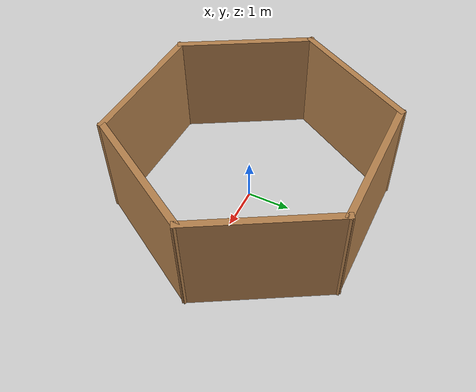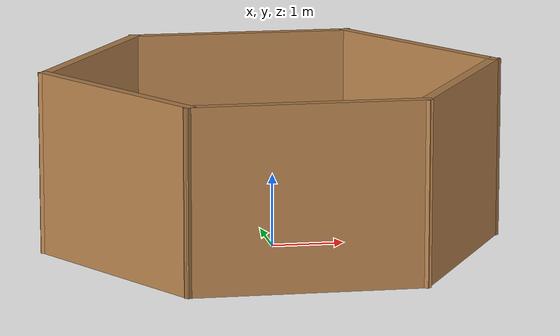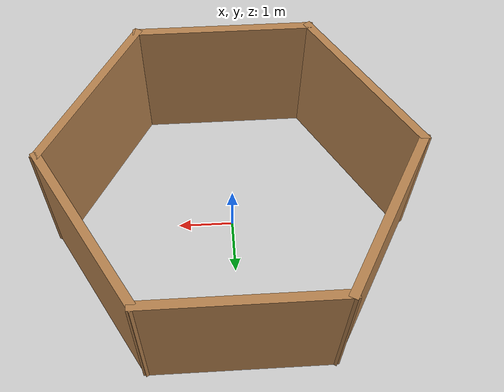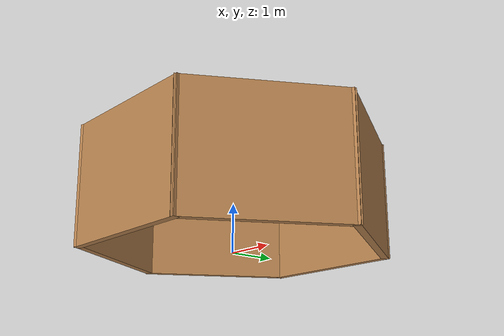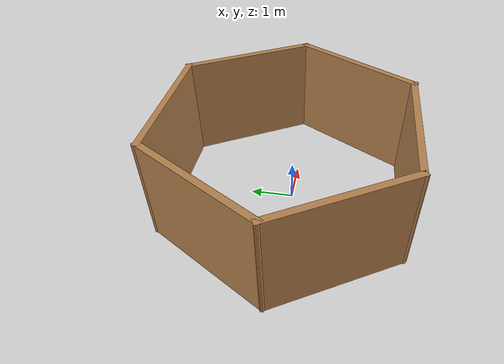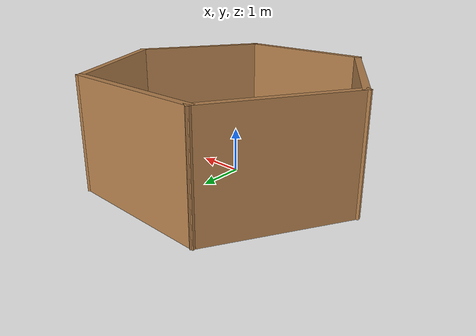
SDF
<?xml version='1.0'?>
<sdf version='1.7'>
  <model name='fishbotwall'>
    <pose>0.016925 0.106771 0 0 -0 0</pose>
    <link name='Wall_0'>
      <collision name='Wall_0_Collision'>
        <geometry>
          <box>
            <size>3.25 0.15 2.5</size>
          </box>
        </geometry>
        <pose>0 0 1.25 0 -0 0</pose>
      </collision>
      <visual name='Wall_0_Visual'>
        <pose>0 0 1.25 0 -0 0</pose>
        <geometry>
          <box>
            <size>3.25 0.15 2.5</size>
          </box>
        </geometry>
        <material>
          <script>
            <uri>file://media/materials/scripts/gazebo.material</uri>
            <name>Gazebo/Wood</name>
          </script>
          <ambient>1 1 1 1</ambient>
        </material>
        <meta>
          <layer>0</layer>
        </meta>
      </visual>
      <pose>0 2.68468 0 0 -0 0</pose>
    </link>
    <link name='Wall_1'>
      <collision name='Wall_1_Collision'>
        <geometry>
          <box>
            <size>3.25 0.15 2.5</size>
          </box>
        </geometry>
        <pose>0 0 1.25 0 -0 0</pose>
      </collision>
      <visual name='Wall_1_Visual'>
        <pose>0 0 1.25 0 -0 0</pose>
        <geometry>
          <box>
            <size>3.25 0.15 2.5</size>
          </box>
        </geometry>
        <material>
          <script>
            <uri>file://media/materials/scripts/gazebo.material</uri>
            <name>Gazebo/Wood</name>
          </script>
          <ambient>1 1 1 1</ambient>
        </material>
        <meta>
          <layer>0</layer>
        </meta>
      </visual>
      <pose>2.325 1.34234 0 0 -0 -1.0472</pose>
    </link>
    <link name='Wall_2'>
      <collision name='Wall_2_Collision'>
        <geometry>
          <box>
            <size>3.25 0.15 2.5</size>
          </box>
        </geometry>
        <pose>0 0 1.25 0 -0 0</pose>
      </collision>
      <visual name='Wall_2_Visual'>
        <pose>0 0 1.25 0 -0 0</pose>
        <geometry>
          <box>
            <size>3.25 0.15 2.5</size>
          </box>
        </geometry>
        <material>
          <script>
            <uri>file://media/materials/scripts/gazebo.material</uri>
            <name>Gazebo/Wood</name>
          </script>
          <ambient>1 1 1 1</ambient>
        </material>
        <meta>
          <layer>0</layer>
        </meta>
      </visual>
      <pose>2.325 -1.34234 0 0 -0 -2.0944</pose>
    </link>
    <link name='Wall_3'>
      <collision name='Wall_3_Collision'>
        <geometry>
          <box>
            <size>3.25 0.15 2.5</size>
          </box>
        </geometry>
        <pose>0 0 1.25 0 -0 0</pose>
      </collision>
      <visual name='Wall_3_Visual'>
        <pose>0 0 1.25 0 -0 0</pose>
        <geometry>
          <box>
            <size>3.25 0.15 2.5</size>
          </box>
        </geometry>
        <material>
          <script>
            <uri>file://media/materials/scripts/gazebo.material</uri>
            <name>Gazebo/Wood</name>
          </script>
          <ambient>1 1 1 1</ambient>
        </material>
        <meta>
          <layer>0</layer>
        </meta>
      </visual>
      <pose>0 -2.68468 0 0 -0 3.14159</pose>
    </link>
    <link name='Wall_4'>
      <collision name='Wall_4_Collision'>
        <geometry>
          <box>
            <size>3.25 0.15 2.5</size>
          </box>
        </geometry>
        <pose>0 0 1.25 0 -0 0</pose>
      </collision>
      <visual name='Wall_4_Visual'>
        <pose>0 0 1.25 0 -0 0</pose>
        <geometry>
          <box>
            <size>3.25 0.15 2.5</size>
          </box>
        </geometry>
        <material>
          <script>
            <uri>file://media/materials/scripts/gazebo.material</uri>
            <name>Gazebo/Wood</name>
          </script>
          <ambient>1 1 1 1</ambient>
        </material>
        <meta>
          <layer>0</layer>
        </meta>
      </visual>
      <pose>-2.325 -1.34234 0 0 -0 2.0944</pose>
    </link>
    <link name='Wall_5'>
      <collision name='Wall_5_Collision'>
        <geometry>
          <box>
            <size>3.25 0.15 2.5</size>
          </box>
        </geometry>
        <pose>0 0 1.25 0 -0 0</pose>
      </collision>
      <visual name='Wall_5_Visual'>
        <pose>0 0 1.25 0 -0 0</pose>
        <geometry>
          <box>
            <size>3.25 0.15 2.5</size>
          </box>
        </geometry>
        <material>
          <script>
            <uri>file://media/materials/scripts/gazebo.material</uri>
            <name>Gazebo/Wood</name>
          </script>
          <ambient>1 1 1 1</ambient>
        </material>
        <meta>
          <layer>0</layer>
        </meta>
      </visual>
      <pose>-2.325 1.34234 0 0 -0 1.0472</pose>
    </link>
    <static>1</static>
  </model>
</sdf>
